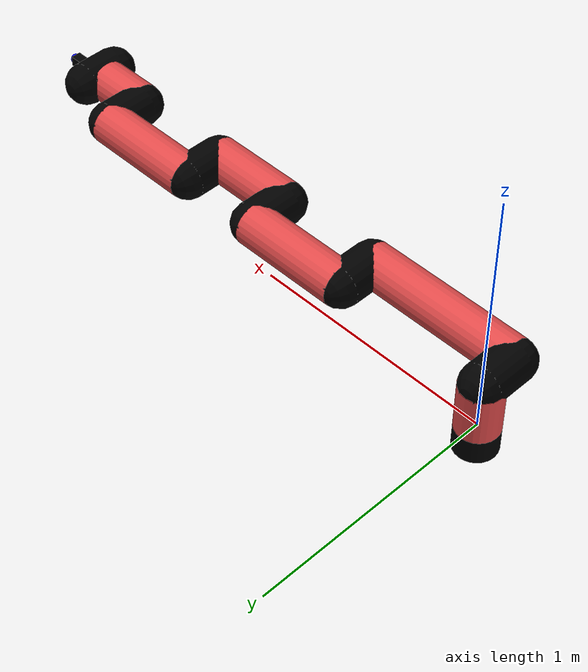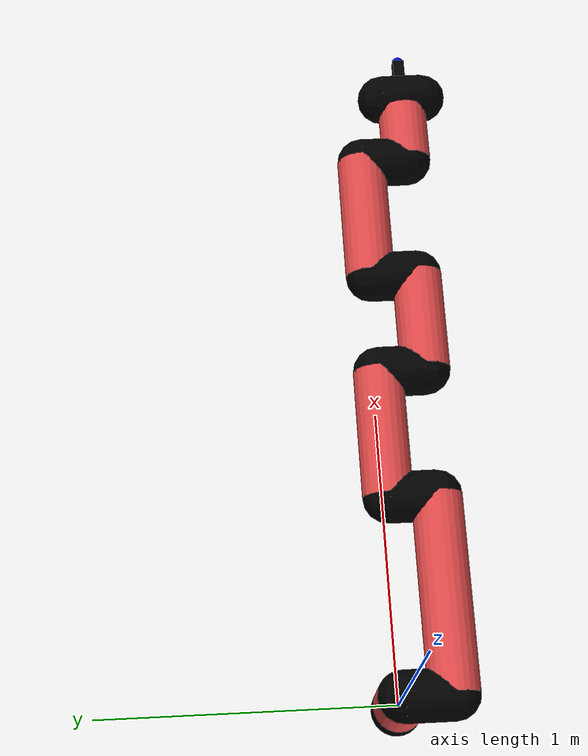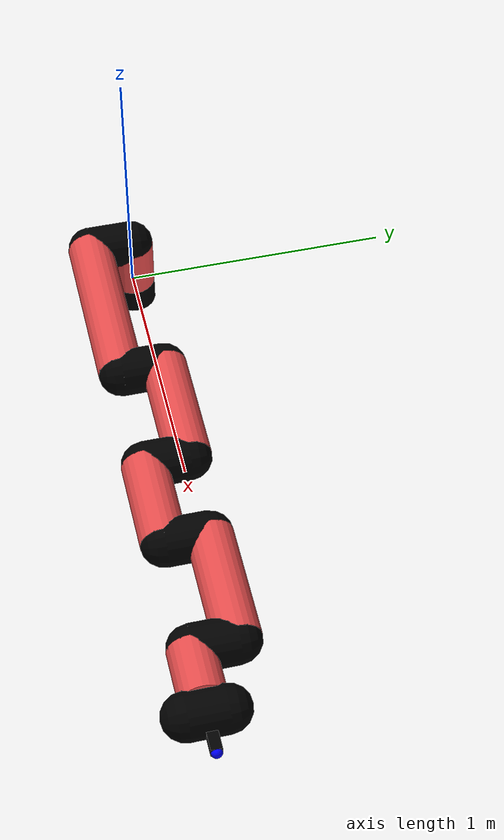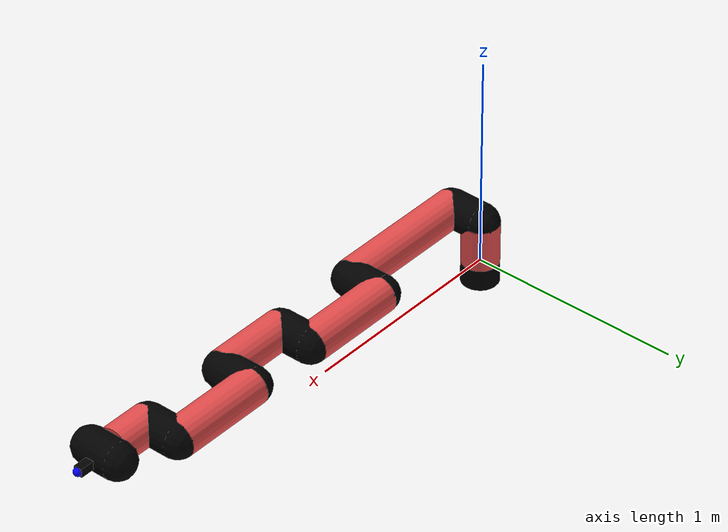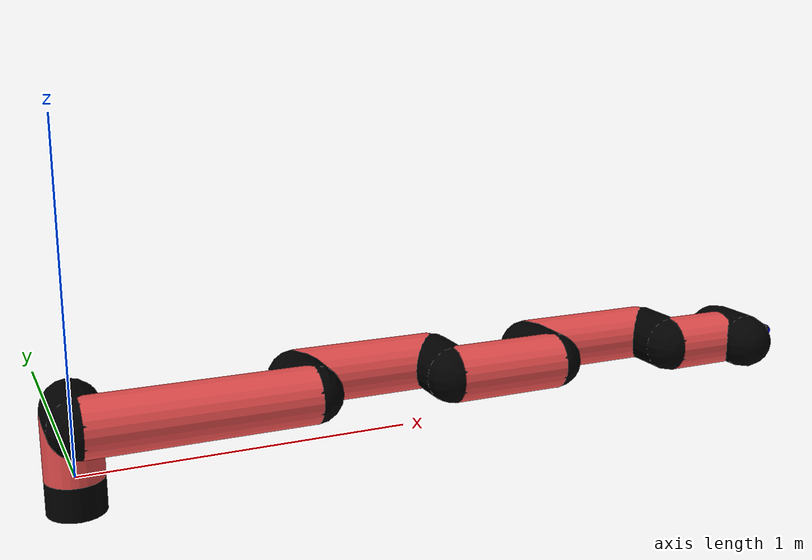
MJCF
<mujoco model="manipulator">
		<compiler angle="degree" coordinate="local" inertiafromgeom="auto" meshdir="meshes/"/>
		<option gravity="0 0 0" integrator="RK4" iterations="30" timestep="0.01"/>

		<default>
		<joint armature="1" limited="true" stiffness="10" damping="15" frictionloss="5.0"/>
		<geom conaffinity="1" condim="3" contype="1" friction=".5 .1 .1" margin="0.002"/>
		<motor ctrllimited="true"/>
		<position ctrllimited="true"/>
		</default>

		<asset>
		<texture builtin="gradient" height="100" rgb1="1.0 1.0 1.0" rgb2="1.0 1.0 1.0" type="skybox" width="100"/>
		<texture builtin="flat" height="32" name="arm_tex" rgb1="0.9 0.3 0.3" type="2d" width="32"/>
		<texture builtin="flat" height="32" name="gripper_tex" rgb1="0.0 0.0 0.0" type="cube" width="32"/>

		<material name="arm_mat" shininess="0.1" specular="0.1" texture="arm_tex"/>
		<material name="gripper_mat" shininess="1" specular="1" texture="gripper_tex"/>
		</asset>

		<worldbody>
		<light cutoff="45" diffuse=".8 .8 .8" dir="0 0.16 -1" directional="false" name="light" pos="0 -2.0 8.0" specular="0.3 0.3 0.3"/>

		<body name="base_link" pos="0 0 -0.1">
		<geom fromto="0 0 0 0 0 0.1" material="arm_mat" name="base_link" rgba="0.0 0.0 0.0 1" size="0.085" type="cylinder"/>
		</body>

		<body name="l1" pos="0 0 0">
<geom fromto="0 0 0 0 0 0.2" material="arm_mat" name="l1" rgba="0.9 0.3 0.3 1" size="0.085" type="cylinder"/>
<geom fromto="0 0 0.2 0 -0.16 0.2" material="arm_mat" name="l1_ex" rgba="0.0 0.0 0.0 1" size="0.085" type="capsule"/>
<joint axis="0 0 1" name="j1" pos="0 0 0" range="-90 90" damping="36.9" frictionloss="5.41"/>

<body name="l2" pos="0 -0.16 0.2">
<geom fromto="0 0 0 0.65 0 0" material="arm_mat" name="l2" rgba="0.9 0.3 0.3 1" size="0.085" type="cylinder"/>
<geom fromto="0.65 0 0 0.65 0.16 0" material="arm_mat" name="l2_ex" rgba="0.0 0.0 0.0 1" size="0.085" type="capsule"/>
<joint axis="0.0 1.0 0.0" name="j2" pos="0 0 0" range="-90 60" damping="33.85" frictionloss="7.68"/>

<body name="l3" pos="0.65 0.16 0">
<geom fromto="0 0 0 0.44 0 0" material="arm_mat" name="l3" rgba="0.9 0.3 0.3 1" size="0.085" type="cylinder"/>
<geom fromto="0.44 0 0 0.44 -0.16 0" material="arm_mat" name="l3_ex" rgba="0.0 0.0 0.0 1" size="0.085" type="capsule"/>
<joint axis="0.0 1.0 0.0" name="j3" pos="0 0 0" range="-30 60" damping="19.17" frictionloss="12.76"/>

<body name="l4" pos="0.44 -0.16 0">
<geom fromto="0 0 0 0.35 0 0" material="arm_mat" name="l4" rgba="0.9 0.3 0.3 1" size="0.085" type="cylinder"/>
<geom fromto="0.35 0 0 0.35 0.16 0" material="arm_mat" name="l4_ex" rgba="0.0 0.0 0.0 1" size="0.085" type="capsule"/>
<joint axis="0.0 1.0 0.0" name="j4" pos="0 0 0" range="-30 60" damping="36.01" frictionloss="9.45"/>

<body name="l5" pos="0.35 0.16 0">
<geom fromto="0 0 0 0.44 0 0" material="arm_mat" name="l5" rgba="0.9 0.3 0.3 1" size="0.085" type="cylinder"/>
<geom fromto="0.44 0 0 0.44 -0.16 0" material="arm_mat" name="l5_ex" rgba="0.0 0.0 0.0 1" size="0.085" type="capsule"/>
<joint axis="0.0 1.0 0.0" name="j5" pos="0 0 0" range="-30 60" damping="26.47" frictionloss="13.03"/>

<body name="l6" pos="0.44 -0.16 0">
<geom fromto="0 0 0 0.2 0 0" material="arm_mat" name="l6" rgba="0.9 0.3 0.3 1" size="0.085" type="cylinder"/>
<joint axis="0.0 1.0 0.0" name="j6" pos="0 0 0" range="-30 60" damping="24.76" frictionloss="6.26"/>

<body name="gripper" pos="0.2 0 0">
<geom fromto="0.05 -0.07 0 0.05 0.07 0" material="gripper_mat" name="gripper" rgba="0.0 0.0 0.0 1" size="0.085" type="capsule"/><joint axis="1 0 0" name="j7" pos="0 0 0" range="-90 90" damping="15" frictionloss="5.0"/><body name="finger" pos="0.1 0 0">
<geom fromto="0 0.0 0 0.1 0.0 0" material="gripper_mat" name="finger" rgba="0.0 0.0 0.0 1" size="0.020 0.06 0.06" type="box"/>
</body>
<site name="current" pos="0.2 0. 0.0" rgba="0. 0. 1.0 1" size="0.02" type="sphere"/>
</body>
</body>
</body>
</body>
</body>
</body>
</body>
</worldbody>
<actuator>
<motor ctrllimited="true" ctrlrange="-1.0 1.0" joint="j1" gear="118.5"/>
<motor ctrllimited="true" ctrlrange="-1.0 1.0" joint="j2" gear="113.03"/>
<motor ctrllimited="true" ctrlrange="-1.0 1.0" joint="j3" gear="107.35"/>
<motor ctrllimited="true" ctrlrange="-1.0 1.0" joint="j4" gear="113.94"/>
<motor ctrllimited="true" ctrlrange="-1.0 1.0" joint="j5" gear="74.63"/>
<motor ctrllimited="true" ctrlrange="-1.0 1.0" joint="j6" gear="112.71"/>
<motor ctrllimited="true" ctrlrange="-1.0 1.0" joint="j7" gear="80"/>
</actuator>
</mujoco>
